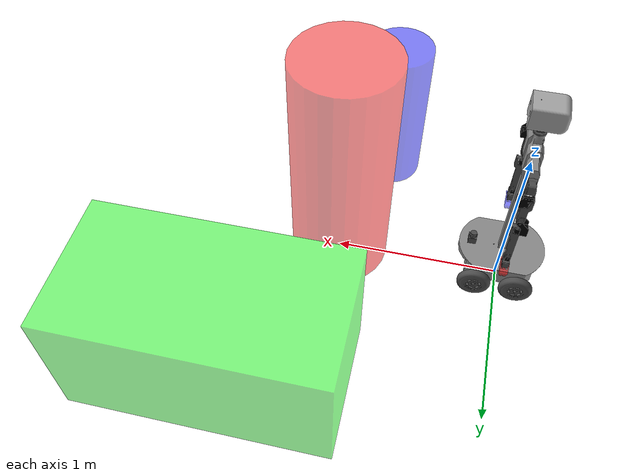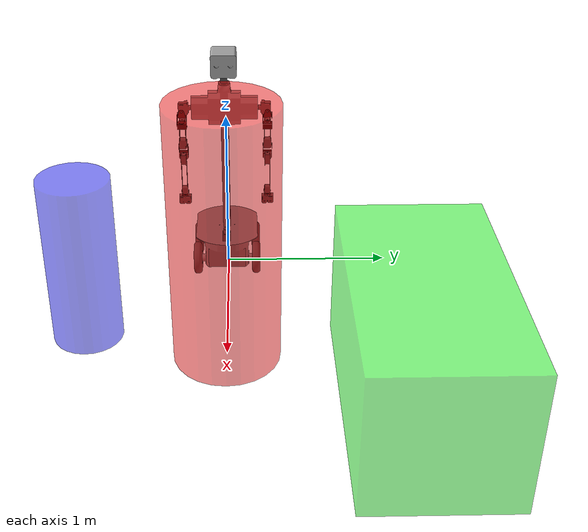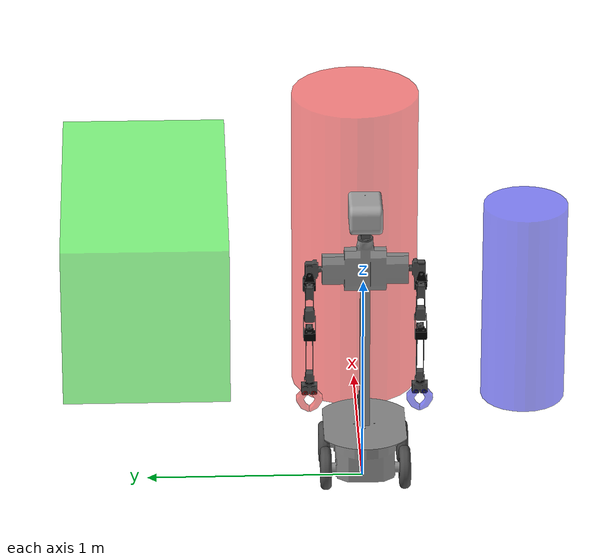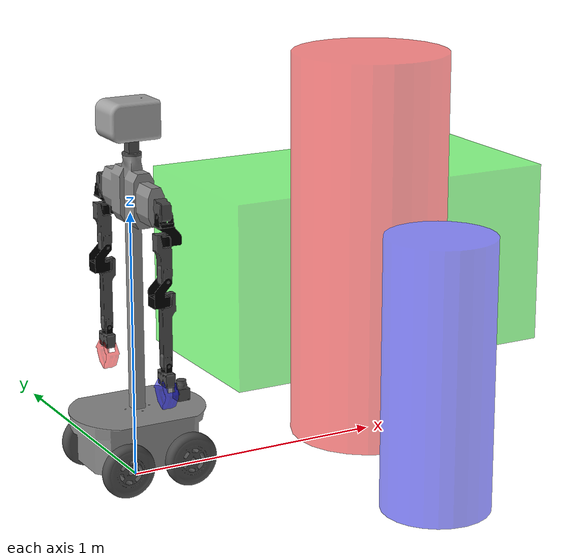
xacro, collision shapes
<?xml version="1.0" ?>
<robot name="bender" xmlns:xacro="http://www.ros.org/wiki/xacro">

  <xacro:include filename="$(find bender_description)/urdf/materials.xacro" />
  <xacro:include filename="$(find bender_description)/urdf/rgbd_camera.xacro"/>
  <xacro:include filename="$(find bender_description)/urdf/ros2_control.xacro" />
  <xacro:include filename="$(find bender_description)/urdf/obstacles.xacro" />

  <xacro:property name="epsilon" value="1e-4"/>

  <!-- Parámetros para obstáculos configurables -->
  <xacro:arg name="enable_obstacles" default="true"/>
  <xacro:arg name="cylinder1_x" default="1.0"/>
  <xacro:arg name="cylinder1_y" default="0.0"/>
  <xacro:arg name="cylinder1_radius" default="0.3"/>

  <xacro:property name="enable_obstacles" value="$(arg enable_obstacles)"/>
  <xacro:property name="cylinder1_x" value="$(arg cylinder1_x)"/>
  <xacro:property name="cylinder1_y" value="$(arg cylinder1_y)"/>
  <xacro:property name="cylinder1_radius" value="$(arg cylinder1_radius)"/>

  <xacro:rgbd_camera
      prefix=""
      camera_name="camera"
      xyz_offset="0.0435 0.03 0.160"
      rpy_offset="0 0 0"/>

  <link name="base_link">
    <visual>
      <origin xyz="0 0 0" rpy="0 0 0"/>
      <geometry>
        <mesh filename="file://$(find bender_description)/meshes/base_link.stl" scale="0.001 0.001 0.001"/>
      </geometry>
      <material name="silver"/>
    </visual>
    <collision>
      <origin xyz="0 0 0" rpy="0 0 0"/>
      <geometry>
        <mesh filename="file://$(find bender_description)/meshes/base_link.stl" scale="0.001 0.001 0.001"/>
      </geometry>
    </collision>
  </link>

  <link name="l2l_1">
    <inertial>
      <origin xyz="-0.008469138038562633 4.816697341814002e-07 -0.07819087904751898" rpy="0 0 0"/>
      <mass value="0.14071836856258027"/>
      <inertia ixx="9.8e-05" iyy="0.000118" izz="8.7e-05" ixy="-0.0" iyz="-0.0" ixz="1.7e-05"/>
    </inertial>
    <visual>
      <origin xyz="-0.035737 -0.247634 -1.04582" rpy="0 0 0"/>
      <geometry>
        <mesh filename="file://$(find bender_description)/meshes/l2l_1.stl" scale="0.001 0.001 0.001"/>
      </geometry>
      <material name="black"/>
    </visual>
    <collision>
      <origin xyz="-0.035737 -0.247634 -1.04582" rpy="0 0 0"/>
      <geometry>
        <mesh filename="file://$(find bender_description)/meshes/l2l_1.stl" scale="0.001 0.001 0.001"/>
      </geometry>
    </collision>
  </link>

  <link name="l3l_1">
    <inertial>
      <origin xyz="-0.004049240589701097 -0.00011662761889197348 -0.1333626785766504" rpy="0 0 0"/>
      <mass value="0.13433192894969845"/>
      <inertia ixx="0.000296" iyy="0.000299" izz="4.9e-05" ixy="0.0" iyz="-0.0" ixz="4e-05"/>
    </inertial>
    <visual>
      <origin xyz="-0.007987 -0.247634 -0.985406" rpy="0 0 0"/>
      <geometry>
        <mesh filename="file://$(find bender_description)/meshes/l3l_1.stl" scale="0.001 0.001 0.001"/>
      </geometry>
      <material name="grey"/>
    </visual>
    <collision>
      <origin xyz="-0.007987 -0.247634 -0.985406" rpy="0 0 0"/>
      <geometry>
        <mesh filename="file://$(find bender_description)/meshes/l3l_1.stl" scale="0.001 0.001 0.001"/>
      </geometry>
    </collision>
  </link>

  <link name="l4l_1">
    <inertial>
      <origin xyz="-0.022033052289373113 -0.027751420924878867 -0.07009451131427447" rpy="0 0 0"/>
      <mass value="0.1319735958452518"/>
      <inertia ixx="6.8e-05" iyy="8e-05" izz="7.4e-05" ixy="-0.0" iyz="0.0" ixz="-2e-06"/>
    </inertial>
    <visual>
      <origin xyz="-0.006819 -0.275388 -0.815556" rpy="0 0 0"/>
      <geometry>
        <mesh filename="file://$(find bender_description)/meshes/l4l_1.stl" scale="0.001 0.001 0.001"/>
      </geometry>
      <material name="black"/>
    </visual>
    <collision>
      <origin xyz="-0.006819 -0.275388 -0.815556" rpy="0 0 0"/>
      <geometry>
        <mesh filename="file://$(find bender_description)/meshes/l4l_1.stl" scale="0.001 0.001 0.001"/>
      </geometry>
    </collision>
  </link>

  <link name="l5l_1">
    <inertial>
      <origin xyz="0.0039138191304953236 -6.519106588914747e-05 -0.1904912654580233" rpy="0 0 0"/>
      <mass value="0.09538513786529154"/>
      <inertia ixx="0.000748" iyy="0.000753" izz="3e-05" ixy="-0.0" iyz="-0.0" ixz="-5.3e-05"/>
    </inertial>
    <visual>
      <origin xyz="-0.006819 -0.247637 -0.767806" rpy="0 0 0"/>
      <geometry>
        <mesh filename="file://$(find bender_description)/meshes/l5l_1.stl" scale="0.001 0.001 0.001"/>
      </geometry>
      <material name="grey"/>
    </visual>
    <collision>
      <origin xyz="-0.006819 -0.247637 -0.767806" rpy="0 0 0"/>
      <geometry>
        <mesh filename="file://$(find bender_description)/meshes/l5l_1.stl" scale="0.001 0.001 0.001"/>
      </geometry>
    </collision>
  </link>

  <link name="l6l_1">
    <inertial>
      <origin xyz="1.1454305421428751e-07 -0.02225042100756011 -0.015076116417847174" rpy="0 0 0"/>
      <mass value="0.004187419664904639"/>
      <inertia ixx="2e-06" iyy="1e-06" izz="2e-06" ixy="-0.0" iyz="0.0" ixz="-0.0"/>
    </inertial>
    <visual>
      <origin xyz="-0.007275 -0.269887 -0.504262" rpy="0 0 0"/>
      <geometry>
        <mesh filename="file://$(find bender_description)/meshes/l6l_1.stl" scale="0.001 0.001 0.001"/>
      </geometry>
      <material name="black"/>
    </visual>
    <collision>
      <origin xyz="-0.007275 -0.269887 -0.504262" rpy="0 0 0"/>
      <geometry>
        <mesh filename="file://$(find bender_description)/meshes/l6l_1.stl" scale="0.001 0.001 0.001"/>
      </geometry>
    </collision>
  </link>

  <link name="l2r_1">
    <inertial>
      <origin xyz="-0.008469138038563282 4.816697872778164e-07 -0.07819087904754218" rpy="0 0 0"/>
      <mass value="0.14071836856258027"/>
      <inertia ixx="9.8e-05" iyy="0.000118" izz="8.7e-05" ixy="-0.0" iyz="-0.0" ixz="1.7e-05"/>
    </inertial>
    <visual>
      <origin xyz="-0.035737 0.262366 -1.04582" rpy="0 0 0"/>
      <geometry>
        <mesh filename="file://$(find bender_description)/meshes/l2r_1.stl" scale="0.001 0.001 0.001"/>
      </geometry>
      <material name="black"/>
    </visual>
    <collision>
      <origin xyz="-0.035737 0.262366 -1.04582" rpy="0 0 0"/>
      <geometry>
        <mesh filename="file://$(find bender_description)/meshes/l2r_1.stl" scale="0.001 0.001 0.001"/>
      </geometry>
    </collision>
  </link>

  <link name="l3r_1">
    <inertial>
      <origin xyz="-0.004049240589694631 -0.00011662761884700945 -0.1333626785766734" rpy="0 0 0"/>
      <mass value="0.13433192894969845"/>
      <inertia ixx="0.000296" iyy="0.000299" izz="4.9e-05" ixy="0.0" iyz="-0.0" ixz="4e-05"/>
    </inertial>
    <visual>
      <origin xyz="-0.007987 0.262366 -0.985406" rpy="0 0 0"/>
      <geometry>
        <mesh filename="file://$(find bender_description)/meshes/l3r_1.stl" scale="0.001 0.001 0.001"/>
      </geometry>
      <material name="grey"/>
    </visual>
    <collision>
      <origin xyz="-0.007987 0.262366 -0.985406" rpy="0 0 0"/>
      <geometry>
        <mesh filename="file://$(find bender_description)/meshes/l3r_1.stl" scale="0.001 0.001 0.001"/>
      </geometry>
    </collision>
  </link>

  <link name="l4r_1">
    <inertial>
      <origin xyz="-0.022033052289359936 0.02775238458496604 -0.070094511314298" rpy="0 0 0"/>
      <mass value="0.1319735958452518"/>
      <inertia ixx="6.8e-05" iyy="8e-05" izz="7.4e-05" ixy="-0.0" iyz="0.0" ixz="-2e-06"/>
    </inertial>
    <visual>
      <origin xyz="-0.006819 0.290116 -0.815556" rpy="0 0 0"/>
      <geometry>
        <mesh filename="file://$(find bender_description)/meshes/l4r_1.stl" scale="0.001 0.001 0.001"/>
      </geometry>
      <material name="black"/>
    </visual>
    <collision>
      <origin xyz="-0.006819 0.290116 -0.815556" rpy="0 0 0"/>
      <geometry>
        <mesh filename="file://$(find bender_description)/meshes/l4r_1.stl" scale="0.001 0.001 0.001"/>
      </geometry>
    </collision>
  </link>

  <link name="l5r_1">
    <inertial>
      <origin xyz="0.003913819130518236 -6.438555604931784e-05 -0.1904912654580455" rpy="0 0 0"/>
      <mass value="0.09538513786529154"/>
      <inertia ixx="0.000748" iyy="0.000753" izz="3e-05" ixy="-0.0" iyz="-0.0" ixz="-5.3e-05"/>
    </inertial>
    <visual>
      <origin xyz="-0.006819 0.262364 -0.767806" rpy="0 0 0"/>
      <geometry>
        <mesh filename="file://$(find bender_description)/meshes/l5r_1.stl" scale="0.001 0.001 0.001"/>
      </geometry>
      <material name="grey"/>
    </visual>
    <collision>
      <origin xyz="-0.006819 0.262364 -0.767806" rpy="0 0 0"/>
      <geometry>
        <mesh filename="file://$(find bender_description)/meshes/l5r_1.stl" scale="0.001 0.001 0.001"/>
      </geometry>
    </collision>
  </link>

  <link name="l6r_1">
    <inertial>
      <origin xyz="1.1454308115020628e-07 0.022250384502269127 -0.015076116417858498" rpy="0 0 0"/>
      <mass value="0.004187419664904639"/>
      <inertia ixx="2e-06" iyy="1e-06" izz="2e-06" ixy="-0.0" iyz="-0.0" ixz="0.0"/>
    </inertial>
    <visual>
      <origin xyz="-0.007275 0.284614 -0.504262" rpy="0 0 0"/>
      <geometry>
        <mesh filename="file://$(find bender_description)/meshes/l6r_1.stl" scale="0.001 0.001 0.001"/>
      </geometry>
      <material name="black"/>
    </visual>
    <collision>
      <origin xyz="-0.007275 0.284614 -0.504262" rpy="0 0 0"/>
      <geometry>
        <mesh filename="file://$(find bender_description)/meshes/l6r_1.stl" scale="0.001 0.001 0.001"/>
      </geometry>
    </collision>
  </link>

  <link name="l2h_1">
    <inertial>
      <origin xyz="-0.01404344492546073 0.030000481747364617 0.06449858090998739" rpy="0 0 0"/>
      <mass value="3.4435410806483597"/>
      <inertia ixx="0.011996" iyy="0.015757" izz="0.017434" ixy="0.0" iyz="-0.0" ixz="-0.000256"/>
    </inertial>
    <visual>
      <origin xyz="-0.007987 0.037366 -1.28382" rpy="0 0 0"/>
      <geometry>
        <mesh filename="file://$(find bender_description)/meshes/l2h_1.stl" scale="0.001 0.001 0.001"/>
      </geometry>
      <material name="head"/>
    </visual>
    <!-- Ojo izquierdo -->
    <visual>
      <origin xyz="0.07 -0.00 0.055" rpy="1.5708 1.5708 1.5708"/> <!-- rotado para que sea un disco plano -->
      <geometry>
        <cylinder radius="0.045" length="0.001"/> <!-- radio 4mm, grosor 1mm -->
      </geometry>
      <material name="light_blue"/>
    </visual>

    <!-- Ojo derecho -->
    <visual>
      <origin xyz="0.07 0.06 0.055" rpy="1.5708 1.5708 1.5708"/> <!-- rotado para que sea un disco plano -->
      <geometry>
        <cylinder radius="0.045" length="0.001"/>
      </geometry>
      <material name="light_blue"/>
    </visual>

    <!-- Boca -->
    <visual>
      <origin xyz="0.07 0.03 0" rpy="0 0 0"/> <!-- rotado para que sea un disco plano -->
      <geometry>
        <box size="0.01 0.08 0.02"/>
      </geometry>
      <material name="casi_blue"/>
    </visual>

    <collision>
      <origin xyz="-0.007987 0.037366 -1.28382" rpy="0 0 0"/>
      <geometry>
        <mesh filename="file://$(find bender_description)/meshes/l2h_1.stl" scale="0.001 0.001 0.001"/>
      </geometry>
    </collision>
  </link>

  <link name="g1r_1">
    <inertial>
      <origin xyz="6.478948623842799e-05 3.840721814474257e-07 -0.026736939315767316" rpy="0 0 0"/>
      <mass value="0.12876405832743776"/>
      <inertia ixx="8.6e-05" iyy="4.3e-05" izz="7e-05" ixy="-0.0" iyz="-0.0" ixz="0.0"/>
    </inertial>
    <visual>
      <origin xyz="-0.007275 0.262364 -0.480247" rpy="0 0 0"/>
      <geometry>
        <mesh filename="file://$(find bender_description)/meshes/g1r_1.stl" scale="0.001 0.001 0.001"/>
      </geometry>
      <material name="grey"/>
    </visual>
    <collision>
      <origin xyz="-0.007275 0.262364 -0.480247" rpy="0 0 0"/>
      <geometry>
        <mesh filename="file://$(find bender_description)/meshes/g1r_1.stl" scale="0.001 0.001 0.001"/>
      </geometry>
    </collision>
  </link>

  <link name="g2ra_1">
    <inertial>
      <origin xyz="-0.0220993118378398 0.01442646877260062 -0.05721188075257794" rpy="0 0 0"/>
      <mass value="0.05474843522698835"/>
      <inertia ixx="3.9e-05" iyy="3.7e-05" izz="2e-05" ixy="-0.0" iyz="-1e-05" ixz="0.0"/>
    </inertial>
    <visual>
      <origin xyz="-0.029225 0.243864 -0.438647" rpy="0 0 0"/>
      <geometry>
        <mesh filename="file://$(find bender_description)/meshes/g2ra_1.stl" scale="0.001 0.001 0.001"/>
      </geometry>
      <material name="blue"/>
    </visual>
    <collision>
      <origin xyz="-0.029225 0.243864 -0.438647" rpy="0 0 0"/>
      <geometry>
        <mesh filename="file://$(find bender_description)/meshes/g2ra_1.stl" scale="0.001 0.001 0.001"/>
      </geometry>
    </collision>
  </link>

  <link name="g2rb_1">
    <inertial>
      <origin xyz="-0.02210045907599773 -0.014425699768063904 -0.05721188075257849" rpy="0 0 0"/>
      <mass value="0.05474843522698835"/>
      <inertia ixx="3.9e-05" iyy="3.7e-05" izz="2e-05" ixy="-0.0" iyz="1e-05" ixz="-0.0"/>
    </inertial>
    <visual>
      <origin xyz="-0.029225 0.280864 -0.438647" rpy="0 0 0"/>
      <geometry>
        <mesh filename="file://$(find bender_description)/meshes/g2rb_1.stl" scale="0.001 0.001 0.001"/>
      </geometry>
      <material name="blue"/>
    </visual>
    <collision>
      <origin xyz="-0.029225 0.280864 -0.438647" rpy="0 0 0"/>
      <geometry>
        <mesh filename="file://$(find bender_description)/meshes/g2rb_1.stl" scale="0.001 0.001 0.001"/>
      </geometry>
    </collision>
  </link>

  <link name="g1l_1">
    <inertial>
      <origin xyz="6.478948621099247e-05 -4.2143764839019937e-07 -0.026736939315755603" rpy="0 0 0"/>
      <mass value="0.12876405832743776"/>
      <inertia ixx="8.6e-05" iyy="4.3e-05" izz="7e-05" ixy="-0.0" iyz="-0.0" ixz="0.0"/>
    </inertial>
    <visual>
      <origin xyz="-0.007275 -0.247637 -0.480247" rpy="0 0 0"/>
      <geometry>
        <mesh filename="file://$(find bender_description)/meshes/g1l_1.stl" scale="0.001 0.001 0.001"/>
      </geometry>
      <material name="grey"/>
    </visual>
    <collision>
      <origin xyz="-0.007275 -0.247637 -0.480247" rpy="0 0 0"/>
      <geometry>
        <mesh filename="file://$(find bender_description)/meshes/g1l_1.stl" scale="0.001 0.001 0.001"/>
      </geometry>
    </collision>
  </link>

  <link name="g2lb_1">
    <inertial>
      <origin xyz="-0.022099311837869458 0.014425663262769728 -0.057211880752566724" rpy="0 0 0"/>
      <mass value="0.05474843522698835"/>
      <inertia ixx="3.9e-05" iyy="3.7e-05" izz="2e-05" ixy="-0.0" iyz="-1e-05" ixz="0.0"/>
    </inertial>
    <visual>
      <origin xyz="-0.029225 -0.266137 -0.438647" rpy="0 0 0"/>
      <geometry>
        <mesh filename="file://$(find bender_description)/meshes/g2lb_1.stl" scale="0.001 0.001 0.001"/>
      </geometry>
      <material name="red"/>
    </visual>
    <collision>
      <origin xyz="-0.029225 -0.266137 -0.438647" rpy="0 0 0"/>
      <geometry>
        <mesh filename="file://$(find bender_description)/meshes/g2lb_1.stl" scale="0.001 0.001 0.001"/>
      </geometry>
    </collision>
  </link>

  <link name="g2la_1">
    <inertial>
      <origin xyz="-0.022100459076024488 -0.01442650527789352 -0.057211880752566335" rpy="0 0 0"/>
      <mass value="0.05474843522698835"/>
      <inertia ixx="3.9e-05" iyy="3.7e-05" izz="2e-05" ixy="-0.0" iyz="1e-05" ixz="-0.0"/>
    </inertial>
    <visual>
      <origin xyz="-0.029225 -0.229137 -0.438647" rpy="0 0 0"/>
      <geometry>
        <mesh filename="file://$(find bender_description)/meshes/g2la_1.stl" scale="0.001 0.001 0.001"/>
      </geometry>
      <material name="red"/>
    </visual>
    <collision>
      <origin xyz="-0.029225 -0.229137 -0.438647" rpy="0 0 0"/>
      <geometry>
        <mesh filename="file://$(find bender_description)/meshes/g2la_1.stl" scale="0.001 0.001 0.001"/>
      </geometry>
    </collision>
  </link>

  <link name="laser_1">
    <inertial>
      <origin xyz="0.00021452729941068283 1.2832545766421587e-05 0.03715423693922987" rpy="0 0 0"/>
      <mass value="0.14304545734211704"/>
      <inertia ixx="8.2e-05" iyy="8.2e-05" izz="4.9e-05" ixy="-0.0" iyz="0.0" ixz="0.0"/>
    </inertial>
    <visual>
      <origin xyz="-0.188322 0.007366 -0.25882" rpy="0 0 0"/>
      <geometry>
        <mesh filename="file://$(find bender_description)/meshes/laser_1.stl" scale="0.001 0.001 0.001"/>
      </geometry>
      <material name="grey"/>
    </visual>
    <collision>
      <origin xyz="-0.188322 0.007366 -0.25882" rpy="0 0 0"/>
      <geometry>
        <mesh filename="file://$(find bender_description)/meshes/laser_1.stl" scale="0.001 0.001 0.001"/>
      </geometry>
    </collision>
  </link>

  <link name="wfr_1">
    <inertial>
      <origin xyz="1.883831442783812e-07 -0.024064274086889242 -4.815819601294846e-07" rpy="0 0 0"/>
      <mass value="1.281712318430354"/>
      <inertia ixx="0.003526" iyy="0.006601" izz="0.003526" ixy="-0.0" iyz="0.0" ixz="0.0"/>
    </inertial>
    <visual>
      <origin xyz="-0.135487 0.164865 -0.09982" rpy="0 0 0"/>
      <geometry>
        <mesh filename="file://$(find bender_description)/meshes/wfr_1.stl" scale="0.001 0.001 0.001"/>
      </geometry>
      <material name="grey"/>
    </visual>
    <collision>
      <origin xyz="-0.135487 0.164865 -0.09982" rpy="0 0 0"/>
      <geometry>
        <mesh filename="file://$(find bender_description)/meshes/wfr_1.stl" scale="0.001 0.001 0.001"/>
      </geometry>
    </collision>
  </link>

  <link name="wrr_1">
    <inertial>
      <origin xyz="1.883831442783812e-07 -0.024064274086889104 -4.815819601294846e-07" rpy="0 0 0"/>
      <mass value="1.281712318430354"/>
      <inertia ixx="0.003526" iyy="0.006601" izz="0.003526" ixy="-0.0" iyz="0.0" ixz="0.0"/>
    </inertial>
    <visual>
      <origin xyz="0.114513 0.164865 -0.09982" rpy="0 0 0"/>
      <geometry>
        <mesh filename="file://$(find bender_description)/meshes/wrr_1.stl" scale="0.001 0.001 0.001"/>
      </geometry>
      <material name="grey"/>
    </visual>
    <collision>
      <origin xyz="0.114513 0.164865 -0.09982" rpy="0 0 0"/>
      <geometry>
        <mesh filename="file://$(find bender_description)/meshes/wrr_1.stl" scale="0.001 0.001 0.001"/>
      </geometry>
    </collision>
  </link>

  <link name="wfl_1">
    <inertial>
      <origin xyz="1.8838314436164794e-07 0.024065023691868914 -4.80844077374587e-07" rpy="0 0 0"/>
      <mass value="1.281712318430354"/>
      <inertia ixx="0.003526" iyy="0.006601" izz="0.003526" ixy="0.0" iyz="0.0" ixz="-0.0"/>
    </inertial>
    <visual>
      <origin xyz="-0.135487 -0.150135 -0.09982" rpy="0 0 0"/>
      <geometry>
        <mesh filename="file://$(find bender_description)/meshes/wfl_1.stl" scale="0.001 0.001 0.001"/>
      </geometry>
      <material name="grey"/>
    </visual>
    <collision>
      <origin xyz="-0.135487 -0.150135 -0.09982" rpy="0 0 0"/>
      <geometry>
        <mesh filename="file://$(find bender_description)/meshes/wfl_1.stl" scale="0.001 0.001 0.001"/>
      </geometry>
    </collision>
  </link>

  <link name="wrl_1">
    <inertial>
      <origin xyz="1.8838314437552572e-07 0.02406502369186897 -4.808440774717315e-07" rpy="0 0 0"/>
      <mass value="1.281712318430354"/>
      <inertia ixx="0.003526" iyy="0.006601" izz="0.003526" ixy="0.0" iyz="0.0" ixz="-0.0"/>
    </inertial>
    <visual>
      <origin xyz="0.114513 -0.150135 -0.09982" rpy="0 0 0"/>
      <geometry>
        <mesh filename="file://$(find bender_description)/meshes/wrl_1.stl" scale="0.001 0.001 0.001"/>
      </geometry>
      <material name="grey"/>
    </visual>
    <collision>
      <origin xyz="0.114513 -0.150135 -0.09982" rpy="0 0 0"/>
      <geometry>
        <mesh filename="file://$(find bender_description)/meshes/wrl_1.stl" scale="0.001 0.001 0.001"/>
      </geometry>
    </collision>
  </link>

  <link name="l1r_1">
    <inertial>
      <origin xyz="-7.750802465356262e-05 -0.023051471870294216 -0.0003746843245819864" rpy="0 0 0"/>
      <mass value="0.17510122063008318"/>
      <inertia ixx="0.000118" iyy="9.1e-05" izz="8e-05" ixy="-0.0" iyz="-1e-06" ixz="-0.0"/>
    </inertial>
    <visual>
      <origin xyz="-0.007987 0.227866 -1.06382" rpy="0 0 0"/>
      <geometry>
        <mesh filename="file://$(find bender_description)/meshes/l1r_1.stl" scale="0.001 0.001 0.001"/>
      </geometry>
      <material name="grey"/>
    </visual>
    <collision>
      <origin xyz="-0.007987 0.227866 -1.06382" rpy="0 0 0"/>
      <geometry>
        <mesh filename="file://$(find bender_description)/meshes/l1r_1.stl" scale="0.001 0.001 0.001"/>
      </geometry>
    </collision>
  </link>

  <link name="l1l_1">
    <inertial>
      <origin xyz="7.755064862937852e-05 0.023052435365023938 -0.0003746843245824305" rpy="0 0 0"/>
      <mass value="0.17510122063008318"/>
      <inertia ixx="0.000118" iyy="9.1e-05" izz="8e-05" ixy="-0.0" iyz="1e-06" ixz="0.0"/>
    </inertial>
    <visual>
      <origin xyz="-0.007987 -0.213134 -1.06382" rpy="0 0 0"/>
      <geometry>
        <mesh filename="file://$(find bender_description)/meshes/l1l_1.stl" scale="0.001 0.001 0.001"/>
      </geometry>
      <material name="grey"/>
    </visual>
    <collision>
      <origin xyz="-0.007987 -0.213134 -1.06382" rpy="0 0 0"/>
      <geometry>
        <mesh filename="file://$(find bender_description)/meshes/l1l_1.stl" scale="0.001 0.001 0.001"/>
      </geometry>
    </collision>
  </link>

  <link name="l1h_1">
    <inertial>
      <origin xyz="2.1311988054537045e-08 4.817473648098883e-07 0.03361523031913305" rpy="0 0 0"/>
      <mass value="0.14686451647034876"/>
      <inertia ixx="0.000113" iyy="0.000108" izz="5.4e-05" ixy="-0.0" iyz="0.0" ixz="0.0"/>
    </inertial>
    <visual>
      <origin xyz="-0.007987 0.007366 -1.21382" rpy="0 0 0"/>
      <geometry>
        <mesh filename="file://$(find bender_description)/meshes/l1h_1.stl" scale="0.001 0.001 0.001"/>
      </geometry>
      <material name="grey"/>
    </visual>
    <collision>
      <origin xyz="-0.007987 0.007366 -1.21382" rpy="0 0 0"/>
      <geometry>
        <mesh filename="file://$(find bender_description)/meshes/l1h_1.stl" scale="0.001 0.001 0.001"/>
      </geometry>
    </collision>
  </link>

  <joint name="l2l_to_l1l" type="revolute">
    <origin xyz="0.02775 0.0345 -0.018" rpy="0 0 0"/>
    <parent link="l1l_1"/>
    <child link="l2l_1"/>
    <axis xyz="-1.0 0.0 -0.0"/>
    <limit upper="${epsilon}" lower="${-1.570796 - epsilon}" effort="100" velocity="100"/>
  </joint>

  <joint name="l3l_to_l2l" type="revolute">
    <origin xyz="-0.02775 0.0 -0.060414" rpy="0 0 0"/>
    <parent link="l2l_1"/>
    <child link="l3l_1"/>
    <axis xyz="0.0 -0.0 -1.0"/>
    <limit upper="${1.134464 + epsilon}" lower="${-1.134464 - epsilon}" effort="100" velocity="100"/>
  </joint>

  <joint name="l4l_to_l3l" type="revolute">
    <origin xyz="-0.001168 0.027754 -0.16985" rpy="0 0 0"/>
    <parent link="l3l_1"/>
    <child link="l4l_1"/>
    <axis xyz="-0.0 -1.0 0.0"/>
    <limit upper="${2.356194 + epsilon}" lower="${-epsilon}" effort="100" velocity="100"/>
  </joint>

  <joint name="l5l_to_l4l" type="revolute">
    <origin xyz="0.0 -0.027751 -0.04775" rpy="0 0 0"/>
    <parent link="l4l_1"/>
    <child link="l5l_1"/>
    <axis xyz="0.0 -0.0 -1.0"/>
    <limit upper="${1.047198 + epsilon}" lower="${-1.047198 -epsilon}" effort="100" velocity="100"/>
  </joint>

  <joint name="l6l_to_l5l" type="revolute">
    <origin xyz="0.000456 0.02225 -0.263544" rpy="0 0 0"/>
    <parent link="l5l_1"/>
    <child link="l6l_1"/>
    <axis xyz="0.0 1.0 0.0"/>
    <limit upper="${1.570796 + epsilon}" lower="${-1.570796 -epsilon}" effort="100" velocity="100"/>
  </joint>

  <joint name="l2r_to_l1r" type="revolute">
    <origin xyz="0.02775 -0.0345 -0.018" rpy="0 0 0"/>
    <parent link="l1r_1"/>
    <child link="l2r_1"/>
    <axis xyz="1.0 0.0 0.0"/>
    <limit upper="${epsilon}" lower="${-1.570796 -epsilon}" effort="100" velocity="100"/>
  </joint>

  <joint name="l3r_to_l2r" type="revolute">
    <origin xyz="-0.02775 0.0 -0.060414" rpy="0 0 0"/>
    <parent link="l2r_1"/>
    <child link="l3r_1"/>
    <axis xyz="0.0 0.0 1.0"/>
    <limit upper="${1.134464 + epsilon}" lower="${-1.134464 -epsilon}" effort="100" velocity="100"/>
  </joint>

  <joint name="l4r_to_l3r" type="revolute">
    <origin xyz="-0.001168 -0.02775 -0.16985" rpy="0 0 0"/>
    <parent link="l3r_1"/>
    <child link="l4r_1"/>
    <axis xyz="-0.0 -1.0 0.0"/>
    <limit upper="${2.356194 + epsilon}" lower="${-epsilon}" effort="100" velocity="100"/>
  </joint>

  <joint name="l5r_to_l4r" type="revolute">
    <origin xyz="0.0 0.027752 -0.04775" rpy="0 0 0"/>
    <parent link="l4r_1"/>
    <child link="l5r_1"/>
    <axis xyz="-0.0 0.0 1.0"/>
    <limit upper="${1.047198 + epsilon}" lower="${-1.047198 - epsilon}" effort="100" velocity="100"/>
  </joint>

  <joint name="l6r_to_l5r" type="revolute">
    <origin xyz="0.000456 -0.02225 -0.263544" rpy="0 0 0"/>
    <parent link="l5r_1"/>
    <child link="l6r_1"/>
    <axis xyz="-0.0 -1.0 0.0"/>
    <limit upper="${1.570796 + epsilon}" lower="${-1.570796 - epsilon}" effort="100" velocity="100"/>
  </joint>

  <joint name="l2h_to_l1h" type="revolute">
    <origin rpy="0 0 0" xyz="0.0 -0.03 0.07"/>
    <parent link="l1h_1"/>
    <child link="l2h_1"/>
    <axis xyz="-0.0 -1.0 0.0"/>
    <limit effort="50" lower="${-0.706858 - epsilon}" upper="${0.706858 + epsilon}" velocity="50"/>
  </joint>

  <joint name="g1r_to_l6r" type="fixed">
    <origin xyz="0.0 0.02225 -0.024015" rpy="0 0 0"/>
    <parent link="l6r_1"/>
    <child link="g1r_1"/>
  </joint>

  <joint name="g2ra_to_g1r" type="revolute">
    <origin xyz="0.02195 0.0185 -0.0416" rpy="0 0 0"/>
    <parent link="g1r_1"/>
    <child link="g2ra_1"/>
    <axis xyz="1.0 -0.0 -0.0"/>
    <limit upper="${1.570796 + epsilon}" lower="${-epsilon}" effort="100" velocity="100"/>
  </joint>

  <joint name="g2rb_to_g1r" type="revolute">
    <mimic joint="g2ra_to_g1r" multiplier="-1" offset="0"/>
    <origin xyz="0.02195 -0.0185 -0.0416" rpy="0 0 0"/>
    <parent link="g1r_1"/>
    <child link="g2rb_1"/>
    <axis xyz="1.0 -0.0 -0.0"/>
    <limit upper="${epsilon}" lower="${-1.570796 - epsilon}" effort="100" velocity="100"/>
  </joint>

  <joint name="g1l_to_l6l" type="fixed">
    <origin xyz="0.0 -0.02225 -0.024015" rpy="0 0 0"/>
    <parent link="l6l_1"/>
    <child link="g1l_1"/>
  </joint>

  <joint name="g2lb_to_g1l" type="revolute">
    <mimic joint="g2la_to_g1l" multiplier="-1" offset="0"/>
    <origin xyz="0.02195 0.0185 -0.0416" rpy="0 0 0"/>
    <parent link="g1l_1"/>
    <child link="g2lb_1"/>
    <axis xyz="-1.0 0.0 -0.0"/>
    <limit upper="${epsilon}" lower="${-1.570796 - epsilon}" effort="100" velocity="100"/>
  </joint>

  <joint name="g2la_to_g1l" type="revolute">
    <origin xyz="0.02195 -0.0185 -0.0416" rpy="0 0 0"/>
    <parent link="g1l_1"/>
    <child link="g2la_1"/>
    <axis xyz="-1.0 0.0 -0.0"/>
    <limit upper="${1.570796 + epsilon}" lower="${-epsilon}" effort="100" velocity="100"/>
  </joint>

  <joint name="laser_to_base_link" type="fixed">
    <origin xyz="0.188322 -0.007366 0.25882" rpy="0 0 0"/>
    <parent link="base_link"/>
    <child link="laser_1"/>
  </joint>

  <joint name="wfr_to_base_link" type="fixed">
    <origin xyz="0.135487 -0.164865 0.09982" rpy="0 0 0"/>
    <parent link="base_link"/>
    <child link="wfr_1"/>
  </joint>

  <joint name="wrr_to_base_link" type="fixed">
    <origin xyz="-0.114513 -0.164865 0.09982" rpy="0 0 0"/>
    <parent link="base_link"/>
    <child link="wrr_1"/>
  </joint>

  <joint name="wfl_to_base_link" type="fixed">
    <origin xyz="0.135487 0.150135 0.09982" rpy="0 0 0"/>
    <parent link="base_link"/>
    <child link="wfl_1"/>
  </joint>

  <joint name="wrl_to_base_link" type="fixed">
    <origin xyz="-0.114513 0.150135 0.09982" rpy="0 0 0"/>
    <parent link="base_link"/>
    <child link="wrl_1"/>
  </joint>

  <joint name="l1r_to_base_link" type="revolute">
    <origin xyz="0.007987 -0.227866 1.06382" rpy="0 0 0"/>
    <parent link="base_link"/>
    <child link="l1r_1"/>
    <axis xyz="0.0 -1.0 0.0"/>
    <limit upper="${2.356194 + epsilon}" lower="${-1.570796 - epsilon}" effort="100" velocity="100"/>
  </joint>

  <joint name="l1l_to_base_link" type="revolute">
    <origin xyz="0.007987 0.213134 1.06382" rpy="0 0 0"/>
    <parent link="base_link"/>
    <child link="l1l_1"/>
    <axis xyz="0.0 -1.0 0.0"/>
    <limit upper="${2.356194 + epsilon}" lower="${-1.570796 - epsilon}" effort="100" velocity="100"/>
  </joint>

  <joint name="l1h_to_base_link" type="revolute">
    <origin rpy="0 0 0" xyz="0.007987 -0.007366 1.21382"/>
    <parent link="base_link"/>
    <child link="l1h_1"/>
    <axis xyz="0.0 0.0 1.0"/>
    <limit effort="50" lower="${-1.570796 - epsilon}" upper="${1.570796 + epsilon}" velocity="50"/>
  </joint>

  <!-- Obstáculos del entorno -->
  <xacro:if value="${enable_obstacles}">

    <!-- Cilindro rojo configurable -->
    <xacro:obstacle_cylinder name="obstacle_cylinder_1"
                           x="${cylinder1_x}" y="${cylinder1_y}" z="0.75"
                           radius="${cylinder1_radius}" height="1.5"
                           color="red"/>

    <!-- Cilindro azul a la derecha -->
    <xacro:obstacle_cylinder name="obstacle_cylinder_2"
                           x="0.8" y="-0.8" z="0.5"
                           radius="0.2" height="1.0"
                           color="blue"/>

    <!-- Caja verde más grande como mesa -->
    <xacro:obstacle_box name="obstacle_box_1"
                       x="1.5" y="1.0" z="0.4"
                       width="1.5" depth="0.8" height="0.8"
                       color="green"/>

  </xacro:if>

</robot>

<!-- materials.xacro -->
<robot>

  <material name="black">
    <color rgba="0.0 0.0 0.0 1.0"/>
  </material>

  <material name="grey">
    <color rgba="0.3 0.3 0.3 1.0"/>
  </material>

  <material name="white">
    <color rgba="1.0 1.0 1.0 1.0"/>
  </material>

  <material name="silver">
    <color rgba="0.55 0.55 0.55 1.0"/>
  </material>

  <material name="head">
    <color rgba="0.65 0.65 0.65 1.0"/>
  </material>

  <material name="blue">
    <color rgba="0 0 1 0.5"/>
  </material>

  <material name="red">
    <color rgba="1 0 0 0.5"/>
  </material>

  <material name="green">
    <color rgba="0 1 0 0.5"/>
  </material>

  <material name="light_blue">
    <color rgba="0.6 0.8 1 1"/>
  </material>

  <material name="casi_blue">
    <color rgba="0.2 0.3 1 1"/>
  </material>

</robot>

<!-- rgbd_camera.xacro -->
<robot xmlns:xacro="http://www.ros.org/wiki/xacro">

  <xacro:property name="M_PI" value="3.1415926535897931" />

  <xacro:macro name="rgbd_camera" params="
    prefix:=''
    camera_name:='camera'
    parent:='l2h_1'
    mesh_file:='file://$(find bender_description)/meshes/d435.stl'
    xyz_offset:='0.0415 0.03 0.125'
    rpy_offset:='0 -0.50 0'
    mesh_xyz_offset:='0 0 0'
    mesh_rpy_offset:='${M_PI/2} 0.0 ${M_PI/2}'
    collision_xyz_offset:='0 0 0'
    collision_rpy_offset:='0 0 0'
    inertial_xyz_offset:='0 0 0'
    inertial_rpy_offset:='0 0 0'
    optical_xyz_offset:='0 0 0'
    optical_rpy_offset:='${-M_PI/2} 0 ${-M_PI/2}'
    depth_frame_xyz_offset:='0 0 0'
    depth_frame_rpy_offset:='0 0 0'
    infra1_xyz_offset:='0 0 0'
    infra1_rpy_offset:='0 0 0'
    infra2_xyz_offset:='0 -0.05 0'
    infra2_rpy_offset:='0 0 0'
    color_xyz_offset:='0 0.015 0'
    color_rpy_offset:='0 0 0'
    cam_width:=0.090
    cam_height:=0.025
    cam_depth:=0.02505
    mass:=0.072
    ixx:=0.003881243
    ixy:=0.0
    ixz:=0.0
    iyy:=0.000498940
    iyz:=0.0
    izz:=0.003879257
    material_name:='aluminum'
    material_color:='0.5 0.5 0.5 1'
    horizontal_fov:=1.5184
    image_width:=424
    image_height:=240
    clip_near:=0.05
    clip_far:=1.5
    update_rate:=2
    always_on:=1
    visualize:=true
    enable_collision:=false">

    <link name="${prefix}${camera_name}_link">
      <visual>
        <origin xyz="${mesh_xyz_offset}" rpy="${mesh_rpy_offset}"/>
        <geometry>
          <mesh filename="${mesh_file}" />
        </geometry>
        <material name="${material_name}">
          <color rgba="${material_color}"/>
        </material>
      </visual>
      <xacro:if value="${enable_collision}">
        <collision>
          <origin xyz="${collision_xyz_offset}" rpy="${collision_rpy_offset}"/>
          <geometry>
            <box size="${cam_depth} ${cam_width} ${cam_height}"/>
          </geometry>
        </collision>
      </xacro:if>
      <inertial>
        <mass value="${mass}" />
        <origin xyz="${inertial_xyz_offset}" rpy="${inertial_rpy_offset}"/>
        <inertia ixx="${ixx}" ixy="${ixy}" ixz="${ixz}"
                 iyy="${iyy}" iyz="${iyz}" izz="${izz}" />
      </inertial>
    </link>

    <joint name="${prefix}${camera_name}_joint" type="fixed">
      <parent link="${prefix}${parent}"/>
      <child link="${prefix}${camera_name}_link" />
      <origin xyz="${xyz_offset}" rpy="${rpy_offset}"/>
    </joint>

    <joint name="${prefix}${camera_name}_depth_joint" type="fixed">
      <origin xyz="${depth_frame_xyz_offset}" rpy="${depth_frame_rpy_offset}"/>
      <parent link="${prefix}${camera_name}_link"/>
      <child link="${prefix}${camera_name}_depth_frame" />
    </joint>
    <link name="${prefix}${camera_name}_depth_frame"/>

    <joint name="${prefix}${camera_name}_depth_optical_joint" type="fixed">
      <origin xyz="${optical_xyz_offset}" rpy="${optical_rpy_offset}" />
      <parent link="${prefix}${camera_name}_depth_frame" />
      <child link="${prefix}${camera_name}_depth_optical_frame" />
    </joint>
    <link name="${prefix}${camera_name}_depth_optical_frame"/>

    <joint name="${prefix}${camera_name}_infra1_joint" type="fixed">
      <origin xyz="${infra1_xyz_offset}" rpy="${infra1_rpy_offset}" />
      <parent link="${prefix}${camera_name}_link" />
      <child link="${prefix}${camera_name}_infra1_frame" />
    </joint>
    <link name="${prefix}${camera_name}_infra1_frame"/>

    <joint name="${prefix}${camera_name}_infra1_optical_joint" type="fixed">
      <origin xyz="${optical_xyz_offset}" rpy="${optical_rpy_offset}" />
      <parent link="${prefix}${camera_name}_infra1_frame" />
      <child link="${prefix}${camera_name}_infra1_optical_frame" />
    </joint>
    <link name="${prefix}${camera_name}_infra1_optical_frame"/>

    <joint name="${prefix}${camera_name}_infra2_joint" type="fixed">
      <origin xyz="${infra2_xyz_offset}" rpy="${infra2_rpy_offset}" />
      <parent link="${prefix}${camera_name}_link" />
      <child link="${prefix}${camera_name}_infra2_frame" />
    </joint>
    <link name="${prefix}${camera_name}_infra2_frame"/>

    <joint name="${prefix}${camera_name}_infra2_optical_joint" type="fixed">
      <origin xyz="${optical_xyz_offset}" rpy="${optical_rpy_offset}" />
      <parent link="${prefix}${camera_name}_infra2_frame" />
      <child link="${prefix}${camera_name}_infra2_optical_frame" />
    </joint>
    <link name="${prefix}${camera_name}_infra2_optical_frame"/>

    <joint name="${prefix}${camera_name}_color_joint" type="fixed">
      <origin xyz="${color_xyz_offset}" rpy="${color_rpy_offset}" />
      <parent link="${prefix}${camera_name}_link" />
      <child link="${prefix}${camera_name}_color_frame" />
    </joint>
    <link name="${prefix}${camera_name}_color_frame"/>

    <joint name="${prefix}${camera_name}_color_optical_joint" type="fixed">
      <origin xyz="${optical_xyz_offset}" rpy="${optical_rpy_offset}" />
      <parent link="${prefix}${camera_name}_color_frame" />
      <child link="${prefix}${camera_name}_color_optical_frame" />
    </joint>
    <link name="${prefix}${camera_name}_color_optical_frame"/>

    <gazebo reference="${prefix}${camera_name}_link">
      <sensor name="${prefix}${camera_name}" type="rgbd_camera">
        <always_on>true</always_on>
        <visualize>true</visualize>
        <update_rate>30</update_rate>
        <topic>${camera_name}</topic>
        <gz_frame_id>${camera_name}</gz_frame_id>
        <camera>
          <camera_info_topic>camera_info</camera_info_topic>
          <horizontal_fov>${horizontal_fov}</horizontal_fov>

          <image>
            <width>${image_width}</width>
            <height>${image_height}</height>
          </image>

          <clip>
            <near>${clip_near}</near>
            <far>${clip_far}</far>
          </clip>

          <noise>
            <type>gaussian</type>
            <mean>0.0</mean>
            <stddev>0.007</stddev>
          </noise>
        </camera>
      </sensor>
    </gazebo>

  </xacro:macro>
</robot>

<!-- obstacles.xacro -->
<robot xmlns:xacro="http://www.ros.org/wiki/xacro">

  <!-- Macro para crear obstáculos cilíndricos -->
  <xacro:macro name="obstacle_cylinder" params="name x y z radius height color:=red">

    <!-- Link del obstáculo -->
    <link name="${name}">
      <visual>
        <origin xyz="0 0 0" rpy="0 0 0"/>
        <geometry>
          <cylinder radius="${radius}" length="${height}"/>
        </geometry>
        <material name="${color}"/>
      </visual>

      <collision>
        <origin xyz="0 0 0" rpy="0 0 0"/>
        <geometry>
          <cylinder radius="${radius}" length="${height}"/>
        </geometry>
      </collision>

      <!-- Masa e inercia para el obstáculo (fijo) -->
      <inertial>
        <origin xyz="0 0 0" rpy="0 0 0"/>
        <mass value="1.0"/>
        <inertia ixx="0.1" iyy="0.1" izz="0.1" ixy="0" ixz="0" iyz="0"/>
      </inertial>
    </link>

    <!-- Joint fijo conectando el obstáculo al mundo -->
    <joint name="${name}_joint" type="fixed">
      <parent link="base_link"/>
      <child link="${name}"/>
      <origin xyz="${x} ${y} ${z}" rpy="0 0 0"/>
    </joint>

  </xacro:macro>

  <!-- Macro para crear obstáculos en forma de caja -->
  <xacro:macro name="obstacle_box" params="name x y z width depth height color:=blue">

    <link name="${name}">
      <visual>
        <origin xyz="0 0 0" rpy="0 0 0"/>
        <geometry>
          <box size="${width} ${depth} ${height}"/>
        </geometry>
        <material name="${color}"/>
      </visual>

      <collision>
        <origin xyz="0 0 0" rpy="0 0 0"/>
        <geometry>
          <box size="${width} ${depth} ${height}"/>
        </geometry>
      </collision>

      <inertial>
        <origin xyz="0 0 0" rpy="0 0 0"/>
        <mass value="1.0"/>
        <inertia ixx="0.1" iyy="0.1" izz="0.1" ixy="0" ixz="0" iyz="0"/>
      </inertial>
    </link>

    <joint name="${name}_joint" type="fixed">
      <parent link="base_link"/>
      <child link="${name}"/>
      <origin xyz="${x} ${y} ${z}" rpy="0 0 0"/>
    </joint>

  </xacro:macro>

</robot>
